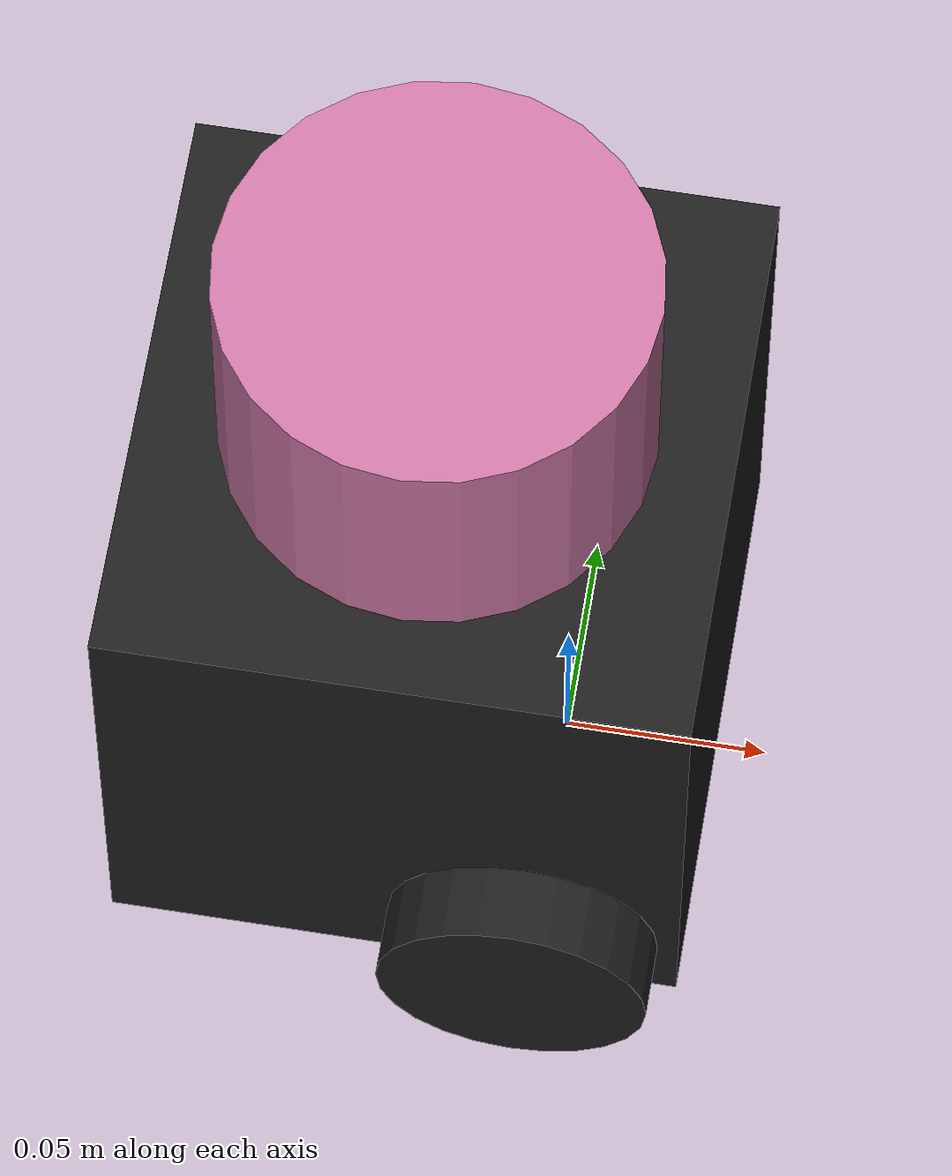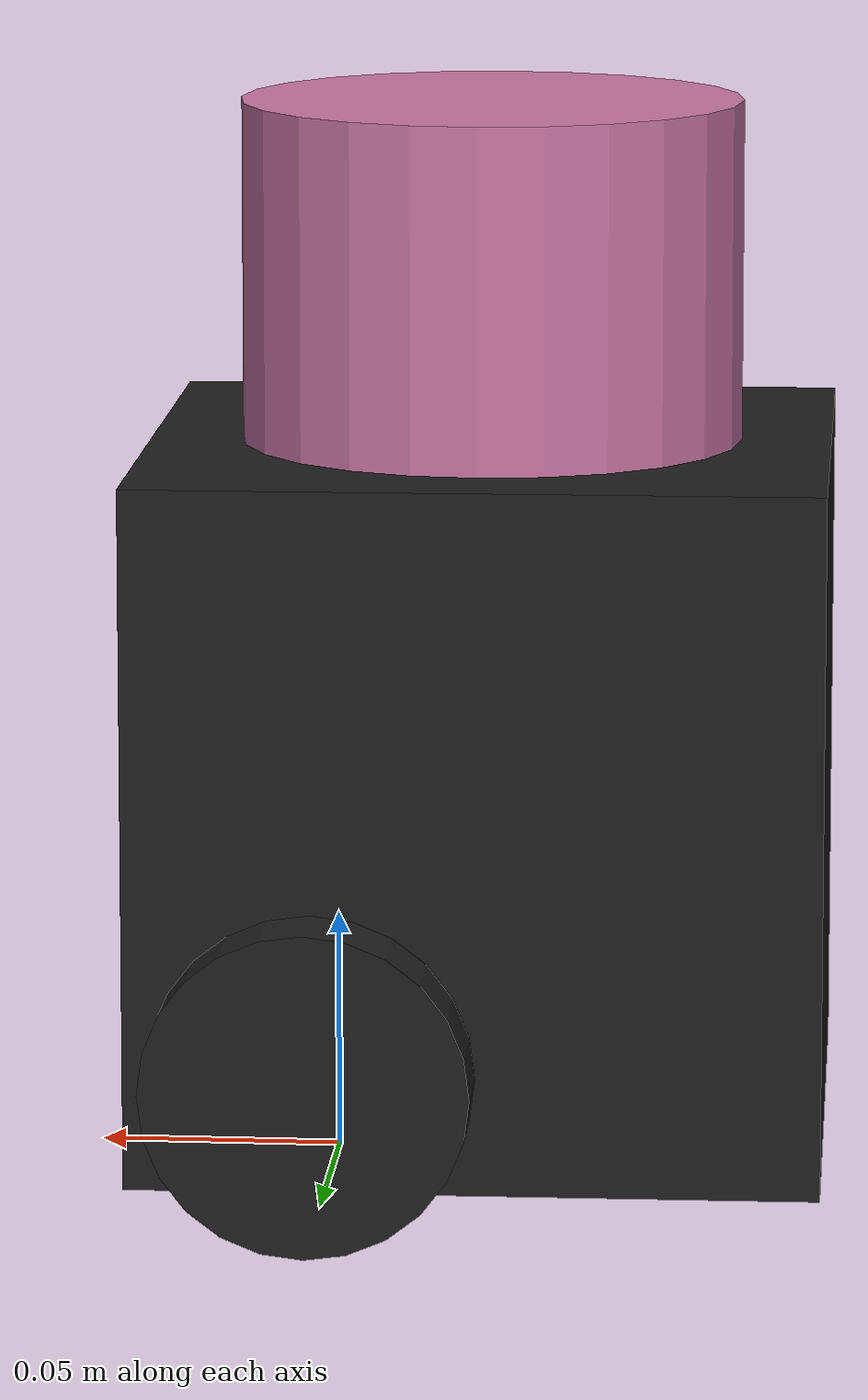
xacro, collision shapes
<?xml version="1.0" ?>
<robot name="turtlebot3_burger" xmlns:xacro="http://ros.org/wiki/xacro">
  <xacro:include filename="$(find turtlebot3_velodyne_description)/urdf/common_properties.xacro"/>
  <xacro:include filename="$(find turtlebot3_velodyne_description)/urdf/turtlebot3_burger.gazebo.xacro"/>
  <xacro:arg name="gpu" default="false"/>
  <xacro:property name="gpu" value="$(arg gpu)" />
  <xacro:arg name="organize_cloud" default="false"/>
  <xacro:property name="organize_cloud" value="$(arg organize_cloud)" />

  <link name="base_footprint"/>

  <joint name="base_joint" type="fixed">
    <parent link="base_footprint"/>
    <child link="base_link"/>
    <origin xyz="0.0 0.0 0.010" rpy="0 0 0"/>
  </joint>

  <link name="base_link">
    <visual>
      <origin xyz="-0.032 0 0.0" rpy="0 0 0"/>
      <geometry>
        <mesh filename="package://turtlebot3_velodyne_description/meshes/bases/burger_base.stl" scale="0.001 0.001 0.001"/>
      </geometry>
      <material name="light_black"/>
    </visual>

    <collision>
      <origin xyz="-0.032 0 0.070" rpy="0 0 0"/>
      <geometry>
        <box size="0.140 0.140 0.143"/>
      </geometry>
    </collision>

    <inertial>
      <origin xyz="0 0 0" rpy="0 0 0"/>
      <mass value="8.2573504e-01"/>
      <inertia ixx="2.2124416e-03" ixy="-1.2294101e-05" ixz="3.4938785e-05"
               iyy="2.1193702e-03" iyz="-5.0120904e-06"
               izz="2.0064271e-03" />
    </inertial>
  </link>

  <joint name="wheel_left_joint" type="continuous">
    <parent link="base_link"/>
    <child link="wheel_left_link"/>
    <origin xyz="0.0 0.08 0.023" rpy="-1.57 0 0"/>
    <axis xyz="0 0 1"/>
  </joint>

  <link name="wheel_left_link">
    <visual>
      <origin xyz="0 0 0" rpy="1.57 0 0"/>
      <geometry>
        <mesh filename="package://turtlebot3_velodyne_description/meshes/wheels/left_tire.stl" scale="0.001 0.001 0.001"/>
      </geometry>
      <material name="dark"/>
    </visual>

    <collision>
      <origin xyz="0 0 0" rpy="0 0 0"/>
      <geometry>
        <cylinder length="0.018" radius="0.033"/>
      </geometry>
    </collision>

    <inertial>
      <origin xyz="0 0 0" />
      <mass value="2.8498940e-02" />
      <inertia ixx="1.1175580e-05" ixy="-4.2369783e-11" ixz="-5.9381719e-09"
               iyy="1.1192413e-05" iyz="-1.4400107e-11"
               izz="2.0712558e-05" />
      </inertial>
  </link>

  <joint name="wheel_right_joint" type="continuous">
    <parent link="base_link"/>
    <child link="wheel_right_link"/>
    <origin xyz="0.0 -0.080 0.023" rpy="-1.57 0 0"/>
    <axis xyz="0 0 1"/>
  </joint>

  <link name="wheel_right_link">
    <visual>
      <origin xyz="0 0 0" rpy="1.57 0 0"/>
      <geometry>
        <mesh filename="package://turtlebot3_velodyne_description/meshes/wheels/right_tire.stl" scale="0.001 0.001 0.001"/>
      </geometry>
      <material name="dark"/>
    </visual>

    <collision>
      <origin xyz="0 0 0" rpy="0 0 0"/>
      <geometry>
        <cylinder length="0.018" radius="0.033"/>
      </geometry>
    </collision>

    <inertial>
      <origin xyz="0 0 0" />
      <mass value="2.8498940e-02" />
      <inertia ixx="1.1175580e-05" ixy="-4.2369783e-11" ixz="-5.9381719e-09"
               iyy="1.1192413e-05" iyz="-1.4400107e-11"
               izz="2.0712558e-05" />
      </inertial>
  </link>

  <joint name="caster_back_joint" type="fixed">
    <parent link="base_link"/>
    <child link="caster_back_link"/>
    <origin xyz="-0.081 0 -0.004" rpy="-1.57 0 0"/>
  </joint>

  <link name="caster_back_link">
    <collision>
      <origin xyz="0 0.001 0" rpy="0 0 0"/>
      <geometry>
        <box size="0.030 0.009 0.020"/>
      </geometry>
    </collision>

    <inertial>
      <origin xyz="0 0 0" />
      <mass value="0.005" />
      <inertia ixx="0.001" ixy="0.0" ixz="0.0"
               iyy="0.001" iyz="0.0"
               izz="0.001" />
    </inertial>
  </link>

  <joint name="imu_joint" type="fixed">
    <parent link="base_link"/>
    <child link="imu_link"/>
    <origin xyz="-0.032 0 0.068" rpy="0 0 0"/>
  </joint>

  <link name="imu_link"/>

  <xacro:include filename="$(find turtlebot3_velodyne_description)/urdf/VLP-16.urdf.xacro"/>
  <xacro:VLP-16 parent="base_link" name="velodyne" topic="/velodyne_points" organize_cloud="${organize_cloud}" hz="10" samples="440" gpu="${gpu}">
    <origin xyz="-0.032 0 0.14" rpy="0 0 0" />
  </xacro:VLP-16>

</robot>

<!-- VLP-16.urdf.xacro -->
<robot xmlns:xacro="http://www.ros.org/wiki/xacro" name="VLP-16">
  <xacro:property name="M_PI" value="3.1415926535897931" />
  <xacro:macro name="VLP-16" params="*origin parent:=base_link name:=velodyne topic:=/velodyne_points organize_cloud:=false hz:=10 lasers:=16 samples:=1875 collision_range:=0.3 min_range:=0.9 max_range:=130.0 noise:=0.008 min_angle:=-${M_PI} max_angle:=${M_PI} gpu:=false">

    <joint name="${name}_base_mount_joint" type="fixed">
      <xacro:insert_block name="origin" />
      <parent link="${parent}"/>
      <child link="${name}_base_link"/>
    </joint>

    <link name="${name}_base_link">
      <inertial>
        <mass value="0.01"/>
        <origin xyz="0 0 0.03585"/>
        <inertia ixx="${(0.01 * (3.0*0.0516*0.0516 + 0.0717*0.0717)) / 12.0}" ixy="0" ixz="0"
          iyy="${(0.01 * (3.0*0.0516*0.0516 + 0.0717*0.0717)) / 12.0}" iyz="0"
          izz="${0.5 * 0.01 * (0.0516*0.0516)}"/>
      </inertial>
      <visual>
        <geometry>
          <mesh filename="package://turtlebot3_velodyne_description/meshes/VLP16_base_1.dae" />
        </geometry>
      </visual>
      <visual>
        <geometry>
          <mesh filename="package://turtlebot3_velodyne_description/meshes/VLP16_base_2.dae" />
        </geometry>
      </visual>
      <collision>
        <origin rpy="0 0 0" xyz="0 0 0.03585"/>
        <geometry>
          <cylinder radius="0.0516" length="0.0717"/>
        </geometry>
      </collision>
    </link>

    <joint name="${name}_base_scan_joint" type="fixed" >
      <origin xyz="0 0 0.0377" rpy="0 0 0" />
      <parent link="${name}_base_link" />
      <child link="${name}"/>
    </joint>

    <link name="${name}">
      <inertial>
        <mass value="0.01"/>
        <origin xyz="0 0 0"/>
        <inertia ixx="1e-7" ixy="0" ixz="0" iyy="1e-7" iyz="0" izz="1e-7"/>
      </inertial>
      <visual>
        <origin xyz="0 0 -0.0377" />
        <geometry>
          <mesh filename="package://turtlebot3_velodyne_description/meshes/VLP16_scan.dae" />
        </geometry>
      </visual>
      <collision>
        <geometry>
          <sphere radius="0"/>
        </geometry>
      </collision>
    </link>

    <!-- Gazebo requires the velodyne_gazebo_plugins package -->
    <gazebo reference="${name}">
      <xacro:if value="${gpu}">
        <sensor type="gpu_ray" name="${name}-VLP16">
          <pose>0 0 0 0 0 0</pose>
          <visualize>false</visualize>
          <update_rate>${hz}</update_rate>
          <ray>
            <scan>
              <horizontal>
                <samples>${samples}</samples>
                <resolution>1</resolution>
                <min_angle>${min_angle}</min_angle>
                <max_angle>${max_angle}</max_angle>
              </horizontal>
              <vertical>
                <samples>${lasers}</samples>
                <resolution>1</resolution>
                <min_angle>-${15.0*M_PI/180.0}</min_angle>
                <max_angle> ${15.0*M_PI/180.0}</max_angle>
              </vertical>
            </scan>
            <range>
              <min>${collision_range}</min>
              <max>${max_range+1}</max>
              <resolution>0.001</resolution>
            </range>
            <noise>
              <type>gaussian</type>
              <mean>0.0</mean>
              <stddev>0.0</stddev>
            </noise>
          </ray>
          <plugin name="gazebo_ros_laser_controller" filename="libgazebo_ros_velodyne_gpu_laser.so">
            <topicName>${topic}</topicName>
            <frameName>${name}</frameName>
            <organize_cloud>${organize_cloud}</organize_cloud>
            <min_range>${min_range}</min_range>
            <max_range>${max_range}</max_range>
            <gaussianNoise>${noise}</gaussianNoise>
          </plugin>
        </sensor>
      </xacro:if>
      <xacro:unless value="${gpu}">
        <sensor type="ray" name="${name}-VLP16">
          <pose>0 0 0 0 0 0</pose>
          <visualize>false</visualize>
          <update_rate>${hz}</update_rate>
          <ray>
            <scan>
              <horizontal>
                <samples>${samples}</samples>
                <resolution>1</resolution>
                <min_angle>${min_angle}</min_angle>
                <max_angle>${max_angle}</max_angle>
              </horizontal>
              <vertical>
                <samples>${lasers}</samples>
                <resolution>1</resolution>
                <min_angle>-${15.0*M_PI/180.0}</min_angle>
                <max_angle> ${15.0*M_PI/180.0}</max_angle>
              </vertical>
            </scan>
            <range>
              <min>${collision_range}</min>
              <max>${max_range+1}</max>
              <resolution>0.001</resolution>
            </range>
            <noise>
              <type>gaussian</type>
              <mean>0.0</mean>
              <stddev>0.0</stddev>
            </noise>
          </ray>
          <plugin name="gazebo_ros_laser_controller" filename="libgazebo_ros_velodyne_laser.so">
            <topicName>${topic}</topicName>
            <frameName>${name}</frameName>
            <organize_cloud>${organize_cloud}</organize_cloud>
            <min_range>${min_range}</min_range>
            <max_range>${max_range}</max_range>
            <gaussianNoise>${noise}</gaussianNoise>
          </plugin>
        </sensor>
      </xacro:unless>
    </gazebo>

  </xacro:macro>
</robot>
